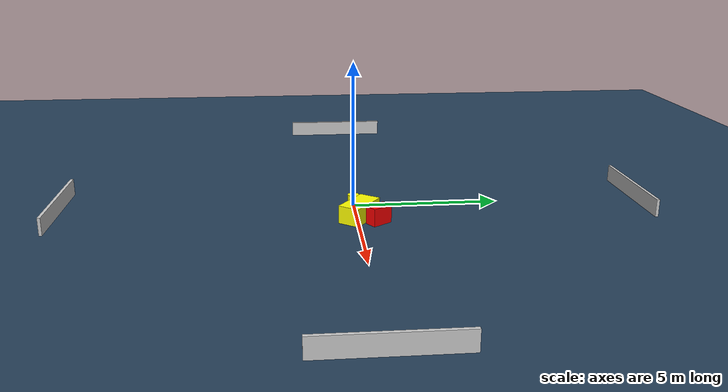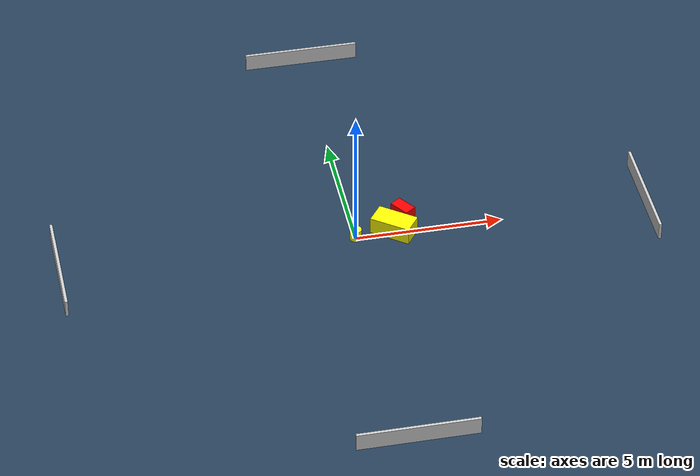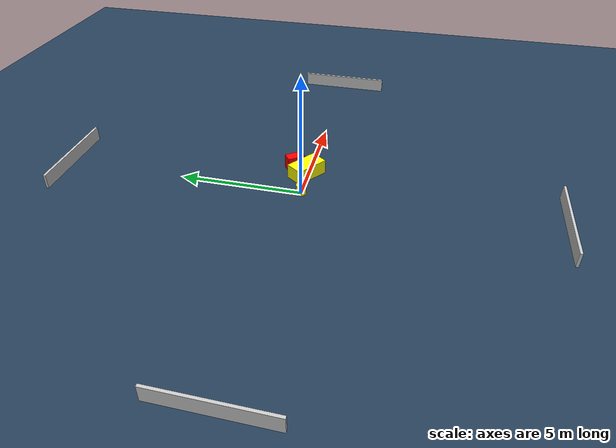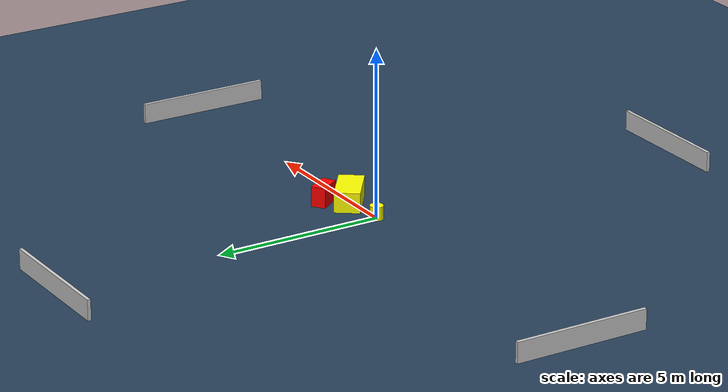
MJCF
<?xml version="1.0" ?>
<mujoco model="generated_environment">
  <option timestep="0.01" integrator="RK4" cone="elliptic"/>
  <default>
    <geom density="1"/>
  </default>
  <asset>
    <texture builtin="gradient" height="3072" name="skybox" rgb1="0.3 0.5 0.7" rgb2="0 0 0" type="skybox" width="512"/>
    <texture builtin="checker" height="300" name="groundplane" rgb1="0.2 0.3 0.4" rgb2="0.1 0.2 0.3" type="2d" width="300"/>
    <material name="groundplane" reflectance="0.2" texrepeat="5 5" texture="groundplane"/>
  </asset>
  <worldbody>
    <light dir="0 0 -1" directional="true" pos="0 0 1.5"/>
    <geom condim="3" friction="0.5 0.005 0.001" material="groundplane" name="floor" pos="0 0 0" size="0 0 0.05" type="plane"/>
    <body name="walls">
      <geom name="wall_1" condim="4" pos="-10.0 0.0 0.3" rgba="0.800000011920929 0.800000011920929 0.800000011920929 1.0" size="0.05 2.0 0.3" type="box"/>
      <geom name="wall_2" condim="4" pos="10.0 0.0 0.3" rgba="0.800000011920929 0.800000011920929 0.800000011920929 1.0" size="0.05 2.0 0.3" type="box"/>
      <geom name="wall_3" condim="4" pos="0.0 -10.0 0.3" rgba="0.800000011920929 0.800000011920929 0.800000011920929 1.0" size="2.0 0.05 0.3" type="box"/>
      <geom name="wall_4" condim="4" pos="0.0 10.0 0.3" rgba="0.800000011920929 0.800000011920929 0.800000011920929 1.0" size="2.0 0.05 0.3" type="box"/>
    </body>
    <body name="robot">
      <joint name="joint_x" type="slide" pos="0 0 0" axis="1 0 0"/>
      <joint name="joint_y" type="slide" pos="0 0 0" axis="0 1 0"/>
      <geom name="robot" type="cylinder" pos="0.0 0.0 0.2" size="0.2 0.2 0.0" mass="5.0" friction="1.0 0.005 0.0001" condim="4" rgba="1.0 1.0 0.0 1.0"/>
    </body>
    <body name="obstacle_1_movable">
      <geom name="obstacle_1_movable" condim="4" pos="1.3297124569965475 0.08387380544496119 0.3" euler="0 0 233.50189066952652" friction="0.0 0.005 0.001" rgba="1.0 1.0 0.0 1.0" size="0.37461093268434764 0.7028445867510162 0.3" type="box" mass="0.1"/>
      <joint type="free"/>
    </body>
    <body name="obstacle_2_static">
      <geom name="obstacle_2_static" condim="4" pos="1.7556520222425176 0.6795664462775849 0.3" euler="0 0 124.87961760752776" friction="0.0 0.005 0.001" rgba="1.0 0.0 0.0 1.0" size="0.36262398001852447 0.21187517660946265 0.3" type="box"/>
    </body>
  </worldbody>
  <actuator>
    <motor name="actuator_x" joint="joint_x" gear="1" ctrlrange="-1 1"/>
    <motor name="actuator_y" joint="joint_y" gear="1" ctrlrange="-1 1"/>
  </actuator>
</mujoco>
